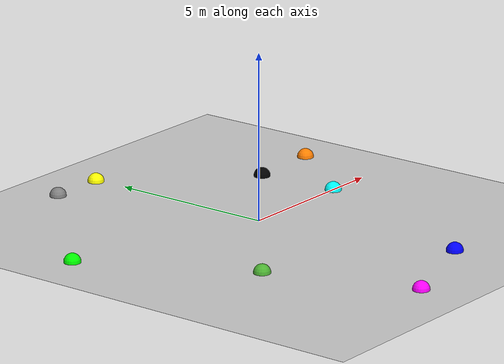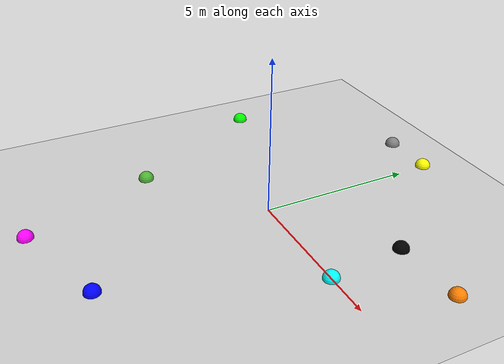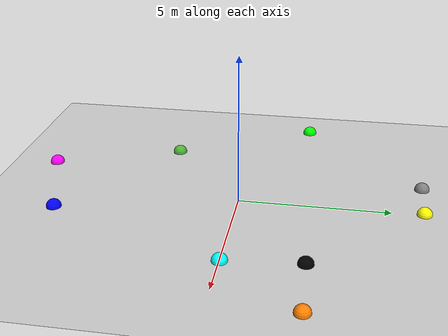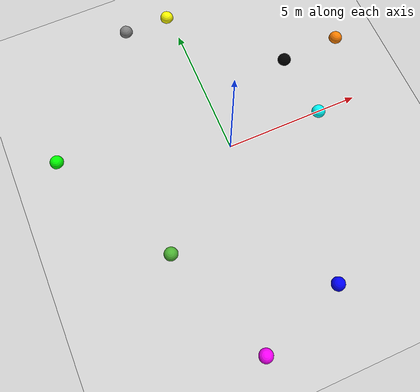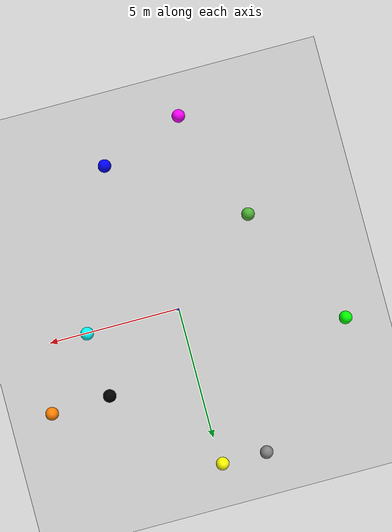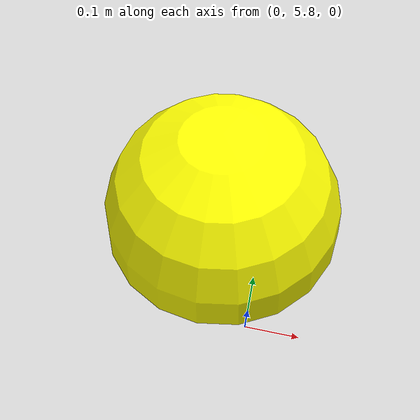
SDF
<?xml version="1.0" ?>
<sdf version="1.5">
  <world name="default">
    <!-- A global light source -->
    <light name='sun' type='directional'>
      <cast_shadows>1</cast_shadows>
      <pose frame=''>0 0 20 0 -0 0</pose>
      <diffuse>0.8 0.8 0.8 1</diffuse>
      <specular>0.1 0.1 0.1 1</specular>
      <attenuation>
        <range>1000</range>
        <constant>0.9</constant>
        <linear>0.01</linear>
        <quadratic>0.001</quadratic>
      </attenuation>
      <direction>0.5 -0.5 -1</direction>
    </light>
    <!-- A ground plane -->
    <include>
      <uri>model://ground_plane</uri>
    </include>

    <scene>
      <ambient>0.7 0.7 0.7 1</ambient>
      <background>0.7 0.7 0.7 1</background>
      <shadows>1</shadows>
    </scene>
    <!-- Only one ROS interface plugin is required per world, as any other plugin can connect a Gazebo
         topic to a ROS topic (or vise versa). -->
    <plugin name="ros_interface_plugin" filename="librotors_gazebo_ros_interface_plugin.so"/>

    <physics name='default_physics' default='0' type='ode'>
      <gravity>0 0 -9.8066</gravity>
      <ode>
        <solver>
          <type>quick</type>
          <iters>10</iters>
          <sor>1.3</sor>
          <use_dynamic_moi_rescaling>0</use_dynamic_moi_rescaling>
        </solver>
        <constraints>
          <cfm>0</cfm>
          <erp>0.2</erp>
          <contact_max_correcting_vel>100</contact_max_correcting_vel>
          <contact_surface_layer>0.001</contact_surface_layer>
        </constraints>
      </ode>
      <max_step_size>0.002</max_step_size>
      <real_time_factor>1</real_time_factor>
      <real_time_update_rate>500</real_time_update_rate>
      <magnetic_field>6e-06 2.3e-05 -4.2e-05</magnetic_field>
    </physics>

  <!-- Node 1 -->
  <model name="node_1"><static>true</static>
    <pose>-5.98 1.93 0 0 0 0</pose>
    <link name="link"><visual name="visual">
      <geometry><sphere><radius>0.25</radius></sphere></geometry>
      <material><ambient>0 1 0 1</ambient></material> <!-- Green -->
    </visual></link>
  </model>

  <!-- Node 2 -->
  <model name="node_2"><static>true</static>
    <pose>1.32 -5.93 0 0 0 0</pose>
    <link name="link"><visual name="visual">
      <geometry><sphere><radius>0.25</radius></sphere></geometry>
      <material><ambient>0 0 1 1</ambient></material> <!-- Blue -->
    </visual></link>
  </model>

  <!-- Node 3 -->
  <model name="node_3"><static>true</static>
    <pose>-0.09 6.04 0 0 0 0</pose>
    <link name="link"><visual name="visual">
      <geometry><sphere><radius>0.25</radius></sphere></geometry>
      <material><ambient>1 1 0 1</ambient></material> <!-- Yellow -->
    </visual></link>
  </model>

  <!-- Node 4 -->
  <model name="node_4"><static>true</static>
    <pose>-1.86 -7.04 0 0 0 0</pose>
    <link name="link"><visual name="visual">
      <geometry><sphere><radius>0.25</radius></sphere></geometry>
      <material><ambient>1 0 1 1</ambient></material> <!-- Magenta -->
    </visual></link>
  </model>

  <!-- Node 5 -->
  <model name="node_5"><static>true</static>
    <pose>3.58 0.01 0 0 0 0</pose>
    <link name="link"><visual name="visual">
      <geometry><sphere><radius>0.25</radius></sphere></geometry>
      <material><ambient>0 1 1 1</ambient></material> <!-- Cyan -->
    </visual></link>
  </model>

  <!-- Node 6 -->
  <model name="node_6"><static>true</static>
    <pose>-1.80 6.05 0 0 0 0</pose>
    <link name="link"><visual name="visual">
      <geometry><sphere><radius>0.25</radius></sphere></geometry>
      <material><ambient>0.5 0.5 0.5 1</ambient></material> <!-- Gray -->
    </visual></link>
  </model>

  <!-- Node 7 -->
  <model name="node_7"><static>true</static>
    <pose>5.62 2.58 0 0 0 0</pose>
    <link name="link"><visual name="visual">
      <geometry><sphere><radius>0.25</radius></sphere></geometry>
      <material><ambient>1 0.5 0 1</ambient></material> <!-- Orange -->
    </visual></link>
  </model>

  <!-- Node 8 -->
  <model name="node_8"><static>true</static>
    <pose>3.36 2.49 0 0 0 0</pose>
    <link name="link"><visual name="visual">
      <geometry><sphere><radius>0.25</radius></sphere></geometry>
      <material><ambient>0 0 0 1</ambient></material> <!-- Black -->
    </visual></link>
  </model>

  <!-- Node 9 -->
  <model name="node_9"><static>true</static>
    <pose>-3.44 -2.78 0 0 0 0</pose>
    <link name="link"><visual name="visual">
      <geometry><sphere><radius>0.25</radius></sphere></geometry>
      <material><ambient>0.3 0.7 0.2 1</ambient></material> <!-- Greenish -->
    </visual></link>
  </model>

  </world>
</sdf>
